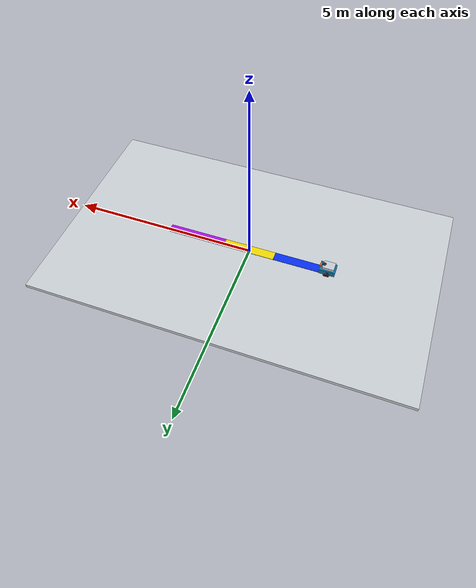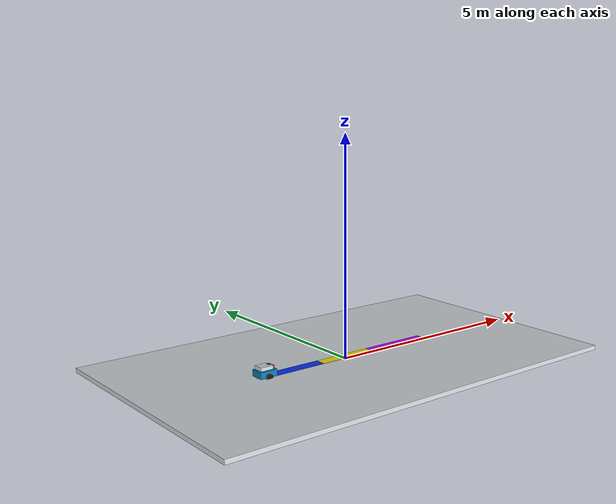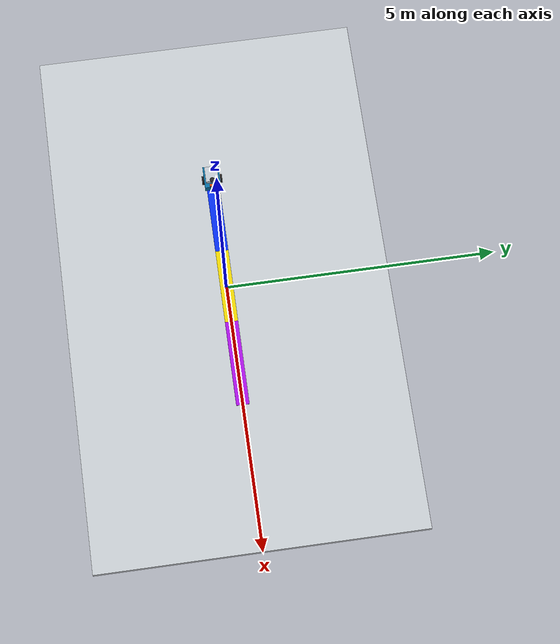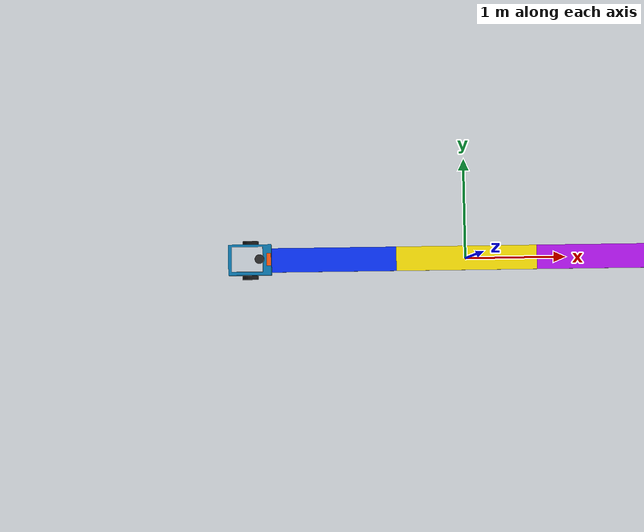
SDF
<?xml version="1.0"?>
<sdf version="1.9">
  <world name="flyto_atomic_color_route">
    <physics name="default_physics" type="dart">
      <max_step_size>0.001</max_step_size>
      <real_time_factor>1.0</real_time_factor>
    </physics>
    <gravity>0 0 -9.80665</gravity>

    <plugin filename="gz-sim-physics-system"
            name="gz::sim::systems::Physics"/>
    <plugin filename="gz-sim-user-commands-system"
            name="gz::sim::systems::UserCommands"/>
    <plugin filename="gz-sim-scene-broadcaster-system"
            name="gz::sim::systems::SceneBroadcaster"/>
    <plugin filename="gz-sim-sensors-system"
            name="gz::sim::systems::Sensors">
      <render_engine>ogre2</render_engine>
    </plugin>

    <scene>
      <ambient>0.8 0.8 0.8 1</ambient>
      <background>0.94 0.96 0.98 1</background>
      <shadows>false</shadows>
      <grid>true</grid>
    </scene>
    <light name="route_light" type="directional">
      <cast_shadows>false</cast_shadows>
      <pose>0 0 8 0 0 0</pose>
      <diffuse>1 1 1 1</diffuse>
      <specular>0.2 0.2 0.2 1</specular>
      <direction>0.1 0.1 -1</direction>
    </light>

    <model name="route_floor">
      <static>true</static>
      <link name="floor">
        <collision name="collision">
          <geometry><box><size>10 6 0.10</size></box></geometry>
        </collision>
        <visual name="visual">
          <geometry><box><size>10 6 0.10</size></box></geometry>
          <material>
            <ambient>0.68 0.70 0.72 1</ambient>
            <diffuse>0.84 0.86 0.88 1</diffuse>
            <specular>0.05 0.05 0.05 1</specular>
          </material>
        </visual>
      </link>
    </model>

    <model name="route_blue">
      <static>true</static>
      <pose>-1.5 0 0.056 0 0 0</pose>
      <link name="line">
        <visual name="visual">
          <geometry><box><size>1.6 0.24 0.012</size></box></geometry>
          <material>
            <ambient>0.02 0.12 0.82 1</ambient>
            <diffuse>0.03 0.20 1.0 1</diffuse>
          </material>
        </visual>
      </link>
    </model>

    <model name="route_yellow">
      <static>true</static>
      <pose>0 0 0.056 0 0 0</pose>
      <link name="line">
        <visual name="visual">
          <geometry><box><size>1.4 0.24 0.012</size></box></geometry>
          <material>
            <ambient>0.86 0.68 0.01 1</ambient>
            <diffuse>1.0 0.90 0.02 1</diffuse>
          </material>
        </visual>
      </link>
    </model>

    <model name="route_purple">
      <static>true</static>
      <pose>1.5 0 0.056 0 0 0</pose>
      <link name="line">
        <visual name="visual">
          <geometry><box><size>1.6 0.24 0.012</size></box></geometry>
          <material>
            <ambient>0.46 0.04 0.68 1</ambient>
            <diffuse>0.72 0.08 0.96 1</diffuse>
          </material>
        </visual>
      </link>
    </model>

    <include>
      <uri>model://flyto_rover</uri>
      <name>flyto_rover</name>
      <pose>-2.15 0 0 0 0 0</pose>
    </include>
  </world>
</sdf>

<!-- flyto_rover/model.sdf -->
<sdf version="1.9">
  <model name="flyto_rover">
    <static>false</static>
    <self_collide>false</self_collide>

    <link name="base_link">
      <pose>0 0 0.14 0 0 0</pose>
      <inertial>
        <mass>8.0</mass>
        <inertia>
          <ixx>0.075</ixx>
          <iyy>0.135</iyy>
          <izz>0.195</izz>
          <ixy>0</ixy>
          <ixz>0</ixz>
          <iyz>0</iyz>
        </inertia>
      </inertial>
      <collision name="base_collision">
        <geometry>
          <box>
            <size>0.42 0.30 0.14</size>
          </box>
        </geometry>
      </collision>
      <visual name="base_visual">
        <geometry>
          <box>
            <size>0.42 0.30 0.14</size>
          </box>
        </geometry>
        <material>
          <ambient>0.04 0.28 0.42 1</ambient>
          <diffuse>0.04 0.48 0.70 1</diffuse>
          <specular>0.2 0.2 0.2 1</specular>
        </material>
      </visual>
      <visual name="payload_tray">
        <pose>-0.02 0 0.12 0 0 0</pose>
        <geometry>
          <box>
            <size>0.30 0.24 0.08</size>
          </box>
        </geometry>
        <material>
          <ambient>0.65 0.68 0.72 1</ambient>
          <diffuse>0.82 0.85 0.88 1</diffuse>
        </material>
      </visual>
      <visual name="direction_marker">
        <pose>0.19 0 0.105 0 0 0</pose>
        <geometry>
          <box>
            <size>0.04 0.12 0.04</size>
          </box>
        </geometry>
        <material>
          <ambient>0.9 0.25 0.05 1</ambient>
          <diffuse>1 0.35 0.05 1</diffuse>
        </material>
      </visual>
    </link>

    <link name="left_wheel">
      <pose>0 0.17 0.08 1.5708 0 0</pose>
      <inertial>
        <mass>0.6</mass>
        <inertia>
          <ixx>0.002</ixx>
          <iyy>0.002</iyy>
          <izz>0.001</izz>
          <ixy>0</ixy>
          <ixz>0</ixz>
          <iyz>0</iyz>
        </inertia>
      </inertial>
      <collision name="collision">
        <geometry>
          <cylinder>
            <radius>0.08</radius>
            <length>0.04</length>
          </cylinder>
        </geometry>
        <surface>
          <friction>
            <ode>
              <mu>1.0</mu>
              <mu2>1.0</mu2>
            </ode>
          </friction>
        </surface>
      </collision>
      <visual name="visual">
        <geometry>
          <cylinder>
            <radius>0.08</radius>
            <length>0.04</length>
          </cylinder>
        </geometry>
        <material>
          <ambient>0.03 0.03 0.03 1</ambient>
          <diffuse>0.08 0.08 0.08 1</diffuse>
        </material>
      </visual>
    </link>

    <link name="right_wheel">
      <pose>0 -0.17 0.08 1.5708 0 0</pose>
      <inertial>
        <mass>0.6</mass>
        <inertia>
          <ixx>0.002</ixx>
          <iyy>0.002</iyy>
          <izz>0.001</izz>
          <ixy>0</ixy>
          <ixz>0</ixz>
          <iyz>0</iyz>
        </inertia>
      </inertial>
      <collision name="collision">
        <geometry>
          <cylinder>
            <radius>0.08</radius>
            <length>0.04</length>
          </cylinder>
        </geometry>
        <surface>
          <friction>
            <ode>
              <mu>1.0</mu>
              <mu2>1.0</mu2>
            </ode>
          </friction>
        </surface>
      </collision>
      <visual name="visual">
        <geometry>
          <cylinder>
            <radius>0.08</radius>
            <length>0.04</length>
          </cylinder>
        </geometry>
        <material>
          <ambient>0.03 0.03 0.03 1</ambient>
          <diffuse>0.08 0.08 0.08 1</diffuse>
        </material>
      </visual>
    </link>

    <link name="rear_caster">
      <pose>-0.15 0 0.045 0 0 0</pose>
      <inertial>
        <mass>0.15</mass>
        <inertia>
          <ixx>0.0001</ixx>
          <iyy>0.0001</iyy>
          <izz>0.0001</izz>
          <ixy>0</ixy>
          <ixz>0</ixz>
          <iyz>0</iyz>
        </inertia>
      </inertial>
      <collision name="collision">
        <geometry>
          <sphere>
            <radius>0.045</radius>
          </sphere>
        </geometry>
        <surface>
          <friction>
            <ode>
              <mu>0.05</mu>
              <mu2>0.05</mu2>
            </ode>
          </friction>
        </surface>
      </collision>
      <visual name="visual">
        <geometry>
          <sphere>
            <radius>0.045</radius>
          </sphere>
        </geometry>
        <material>
          <ambient>0.12 0.12 0.12 1</ambient>
          <diffuse>0.2 0.2 0.2 1</diffuse>
        </material>
      </visual>
    </link>

    <link name="lidar_link">
      <pose>0.10 0 0.285 0 0 0</pose>
      <inertial>
        <mass>0.2</mass>
        <inertia>
          <ixx>0.0002</ixx>
          <iyy>0.0002</iyy>
          <izz>0.0002</izz>
          <ixy>0</ixy>
          <ixz>0</ixz>
          <iyz>0</iyz>
        </inertia>
      </inertial>
      <visual name="visual">
        <geometry>
          <cylinder>
            <radius>0.045</radius>
            <length>0.035</length>
          </cylinder>
        </geometry>
        <material>
          <ambient>0.08 0.08 0.08 1</ambient>
          <diffuse>0.16 0.16 0.16 1</diffuse>
        </material>
      </visual>
      <sensor name="front_lidar" type="gpu_lidar">
        <topic>/flyto/scan</topic>
        <update_rate>10</update_rate>
        <always_on>true</always_on>
        <visualize>true</visualize>
        <lidar>
          <scan>
            <horizontal>
              <samples>360</samples>
              <resolution>1</resolution>
              <min_angle>-3.14159</min_angle>
              <max_angle>3.14159</max_angle>
            </horizontal>
          </scan>
          <range>
            <min>0.12</min>
            <max>8.0</max>
            <resolution>0.01</resolution>
          </range>
        </lidar>
      </sensor>
    </link>

    <link name="route_camera_link">
      <pose>0.32 0 0.30 0 1.5708 0</pose>
      <inertial>
        <mass>0.08</mass>
        <inertia>
          <ixx>0.00008</ixx>
          <iyy>0.00008</iyy>
          <izz>0.00008</izz>
          <ixy>0</ixy>
          <ixz>0</ixz>
          <iyz>0</iyz>
        </inertia>
      </inertial>
      <sensor name="route_camera" type="camera">
        <topic>/flyto/camera/image</topic>
        <update_rate>15</update_rate>
        <always_on>true</always_on>
        <visualize>true</visualize>
        <camera>
          <horizontal_fov>1.20</horizontal_fov>
          <image>
            <width>160</width>
            <height>120</height>
            <format>R8G8B8</format>
          </image>
          <clip>
            <near>0.05</near>
            <far>1.0</far>
          </clip>
        </camera>
      </sensor>
    </link>

    <joint name="left_wheel_joint" type="revolute">
      <parent>base_link</parent>
      <child>left_wheel</child>
      <axis>
        <xyz expressed_in="__model__">0 1 0</xyz>
      </axis>
    </joint>
    <joint name="right_wheel_joint" type="revolute">
      <parent>base_link</parent>
      <child>right_wheel</child>
      <axis>
        <xyz expressed_in="__model__">0 1 0</xyz>
      </axis>
    </joint>
    <joint name="rear_caster_joint" type="ball">
      <parent>base_link</parent>
      <child>rear_caster</child>
    </joint>
    <joint name="lidar_joint" type="fixed">
      <parent>base_link</parent>
      <child>lidar_link</child>
    </joint>
    <joint name="route_camera_joint" type="fixed">
      <parent>base_link</parent>
      <child>route_camera_link</child>
    </joint>

    <plugin filename="gz-sim-diff-drive-system"
            name="gz::sim::systems::DiffDrive">
      <left_joint>left_wheel_joint</left_joint>
      <right_joint>right_wheel_joint</right_joint>
      <wheel_separation>0.34</wheel_separation>
      <wheel_radius>0.08</wheel_radius>
      <topic>/flyto/cmd_vel</topic>
      <odom_topic>/flyto/odom</odom_topic>
      <tf_topic>/flyto/tf</tf_topic>
      <frame_id>odom</frame_id>
      <child_frame_id>base_link</child_frame_id>
      <odom_publish_frequency>30</odom_publish_frequency>
    </plugin>
    <plugin filename="gz-sim-odometry-publisher-system"
            name="gz::sim::systems::OdometryPublisher">
      <odom_frame>world</odom_frame>
      <robot_base_frame>flyto_rover</robot_base_frame>
      <odom_topic>/flyto/ground_truth</odom_topic>
      <odom_publish_frequency>30</odom_publish_frequency>
      <dimensions>3</dimensions>
    </plugin>
  </model>
</sdf>
